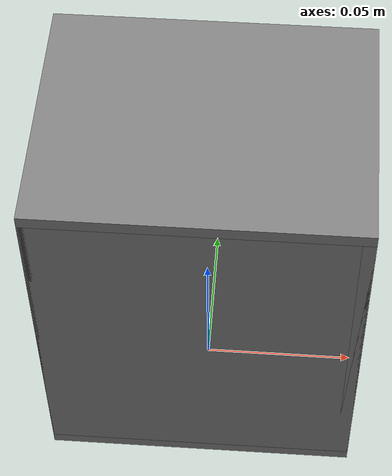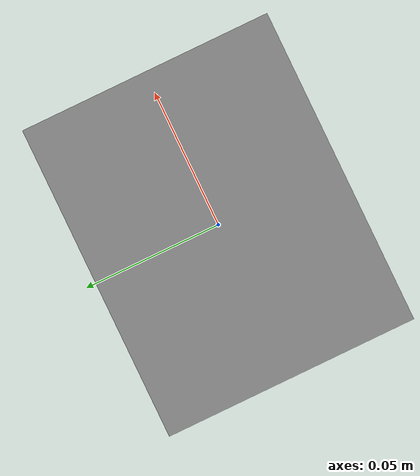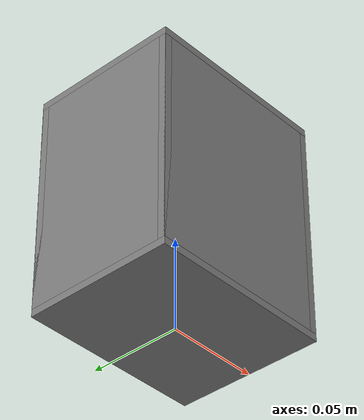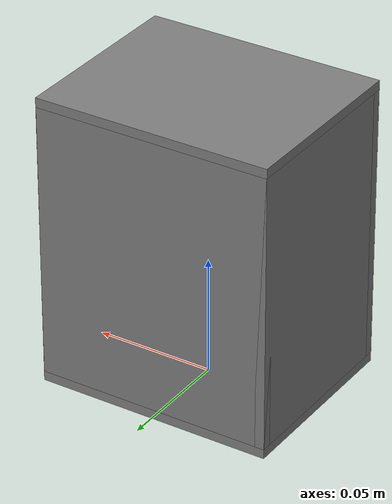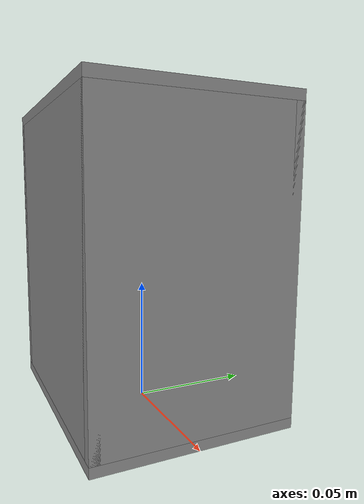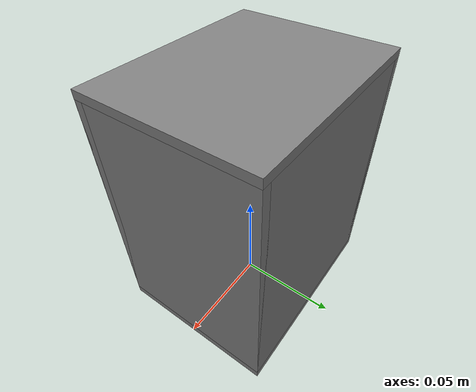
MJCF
<mujoco model="hinged_carton">
  <compiler angle="radian"/>
  <worldbody>
    <body name="carton" pos="0 0 0">
      <geom name="carton_bottom" type="box" size="0.05 0.04 0.002" pos="0 0 0.002"/>
      <geom name="carton_wall_xp" type="box" size="0.002 0.04 0.058" pos="0.048 0 0.062"/>
      <geom name="carton_wall_xn" type="box" size="0.002 0.04 0.058" pos="-0.048 0 0.062"/>
      <geom name="carton_wall_yp" type="box" size="0.05 0.002 0.058" pos="0 0.038 0.062"/>
      <geom name="carton_wall_yn" type="box" size="0.05 0.002 0.058" pos="0 -0.038 0.062"/>
      <body name="cap" pos="-0.05 0 0.122">
        <joint name="cap_hinge" type="hinge" axis="0 -1 0" range="0 2.6" damping="0.02" frictionloss="0.3"/>
        <geom name="cap_geom" type="box" size="0.05 0.04 0.002" pos="0.05 0 0" mass="0.02"/>
      </body>
    </body>
  </worldbody>
</mujoco>
